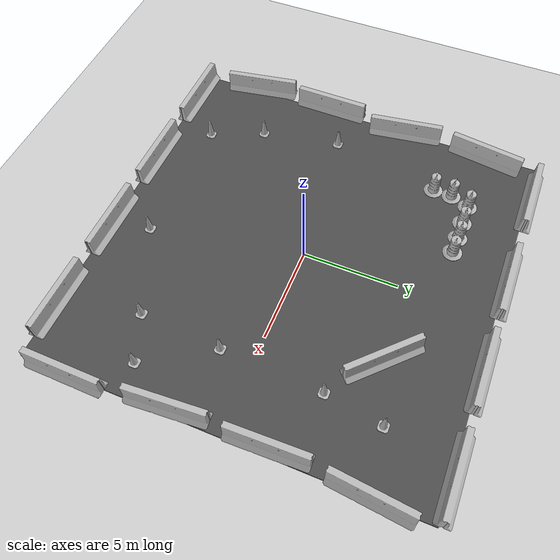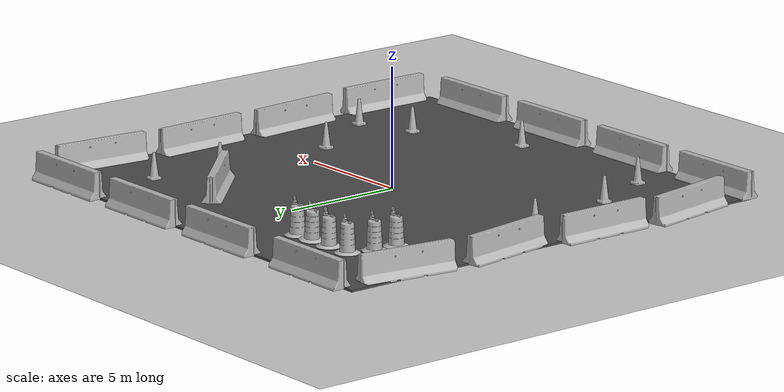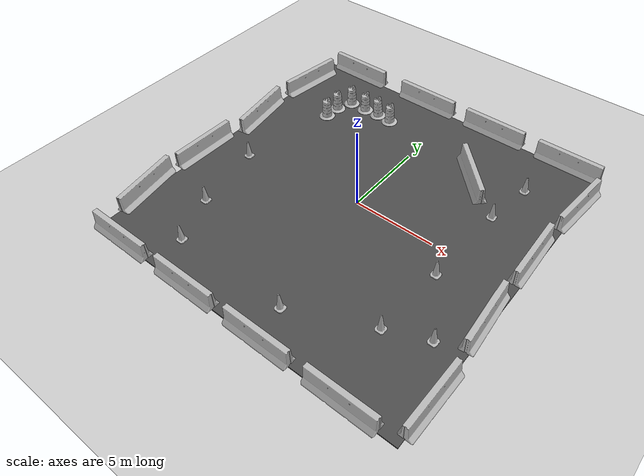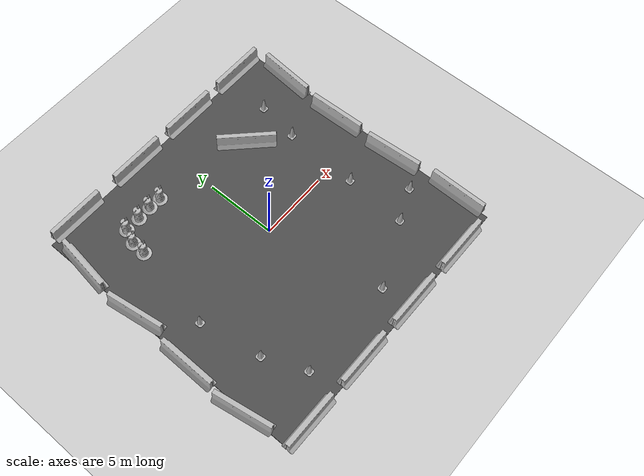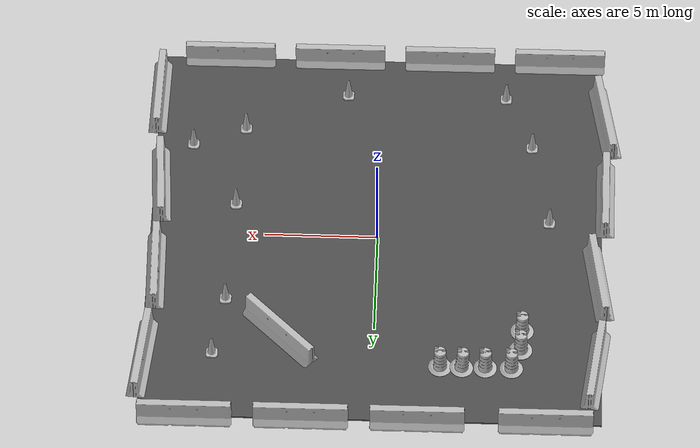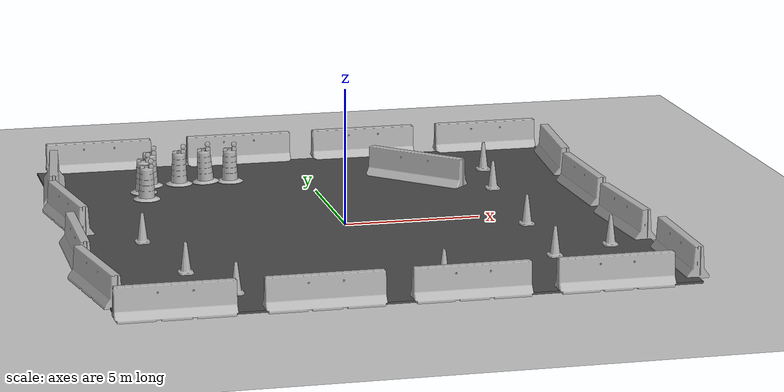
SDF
<sdf version="1.7">
 <world name="default">
  <light name="sun" type="directional">
   <pose>0 0 10 0 -0 0</pose>
   <diffuse>0.8 0.8 0.8 1</diffuse>
   <specular>0.2 0.2 0.2 1</specular>
   <attenuation>
    <range>1000</range>
    <constant>0.9</constant>
    <linear>0.01</linear>
    <quadratic>0.001</quadratic>
   </attenuation>
   <direction>-0.5 0.1 -0.9</direction>
   <spot><inner_angle>0</inner_angle><outer_angle>0</outer_angle><falloff>0</falloff></spot>
  </light>
  <model name="ground_plane">
   <static>1</static>
   <link name="link">
    <collision name="collision">
     <geometry><plane><normal>0 0 1</normal><size>100 100</size></plane></geometry>
     <surface><friction><ode><mu>100</mu><mu2>50</mu2></ode></friction></surface>
    </collision>
    <visual name="visual">
     <cast_shadows>0</cast_shadows>
     <geometry><plane><normal>0 0 1</normal><size>100 100</size></plane></geometry>
     <material>
      <script><uri>file://media/materials/scripts/gazebo.material</uri><name>Gazebo/Grey</name></script>
     </material>
    </visual>
    <velocity_decay><linear>0</linear><angular>0</angular></velocity_decay>
   </link>
  </model>
  <physics type="ode">
   <max_step_size>0.001</max_step_size>
   <real_time_factor>1</real_time_factor>
   <real_time_update_rate>1000</real_time_update_rate>
  </physics>
  <physics name="fast_simulation" default="0" type="ode">
   <real_time_update_rate>3000</real_time_update_rate>
   <max_step_size>0.001</max_step_size>
   <real_time_factor>1</real_time_factor>
  </physics>
  <scene><ambient>0.4 0.4 0.4 1</ambient><background>0.7 0.7 0.7 1</background><shadows>1</shadows></scene>
  <model name="jersey_barrier">
   <static>1</static>
   <link name="link">
    <visual name="visual">
     <geometry><mesh><uri>model://jersey_barrier/meshes/jersey_barrier.dae</uri></mesh></geometry>
    </visual>
    <collision name="upright">
     <pose>0 0 0.5715 0 -0 0</pose>
     <geometry><box><size>4.06542 0.3063 1.143</size></box></geometry>
    </collision>
    <collision name="base">
     <pose>0 0 0.032258 0 -0 0</pose>
     <geometry><box><size>4.06542 0.8107 0.064516</size></box></geometry>
    </collision>
    <collision name="base2">
     <pose>0 0 0.1 0 -0 0</pose>
     <geometry><box><size>4.06542 0.65 0.1</size></box></geometry>
    </collision>
    <collision name="base3">
     <pose>0 0 0.2 0 -0 0</pose>
     <geometry><box><size>4.06542 0.5 0.1</size></box></geometry>
    </collision>
    <collision name="left-angle">
     <pose>0 -0.224 0.2401 0.9 -0 0</pose>
     <geometry><box><size>4.06542 0.5 0.064516</size></box></geometry>
    </collision>
    <collision name="right-angle">
     <pose>0 0.224 0.2401 -0.9 0 0</pose>
     <geometry><box><size>4.06542 0.5 0.064516</size></box></geometry>
    </collision>
    <velocity_decay><linear>0</linear><angular>0</angular></velocity_decay>
   </link>
   <pose>-8 -10 0 0 -0 0</pose>
  </model>
  <model name="jersey_barrier_0">
   <static>1</static>
   <link name="link">
    <visual name="visual">
     <geometry><mesh><uri>model://jersey_barrier/meshes/jersey_barrier.dae</uri></mesh></geometry>
    </visual>
    <collision name="upright">
     <pose>0 0 0.5715 0 -0 0</pose>
     <geometry><box><size>4.06542 0.3063 1.143</size></box></geometry>
    </collision>
    <collision name="base">
     <pose>0 0 0.032258 0 -0 0</pose>
     <geometry><box><size>4.06542 0.8107 0.064516</size></box></geometry>
    </collision>
    <collision name="base2">
     <pose>0 0 0.1 0 -0 0</pose>
     <geometry><box><size>4.06542 0.65 0.1</size></box></geometry>
    </collision>
    <collision name="base3">
     <pose>0 0 0.2 0 -0 0</pose>
     <geometry><box><size>4.06542 0.5 0.1</size></box></geometry>
    </collision>
    <collision name="left-angle">
     <pose>0 -0.224 0.2401 0.9 -0 0</pose>
     <geometry><box><size>4.06542 0.5 0.064516</size></box></geometry>
    </collision>
    <collision name="right-angle">
     <pose>0 0.224 0.2401 -0.9 0 0</pose>
     <geometry><box><size>4.06542 0.5 0.064516</size></box></geometry>
    </collision>
    <velocity_decay><linear>0</linear><angular>0</angular></velocity_decay>
   </link>
   <pose>-3 -10 0 0 -0 0</pose>
  </model>
  <model name="jersey_barrier_1">
   <static>1</static>
   <link name="link">
    <visual name="visual">
     <geometry><mesh><uri>model://jersey_barrier/meshes/jersey_barrier.dae</uri></mesh></geometry>
    </visual>
    <collision name="upright">
     <pose>0 0 0.5715 0 -0 0</pose>
     <geometry><box><size>4.06542 0.3063 1.143</size></box></geometry>
    </collision>
    <collision name="base">
     <pose>0 0 0.032258 0 -0 0</pose>
     <geometry><box><size>4.06542 0.8107 0.064516</size></box></geometry>
    </collision>
    <collision name="base2">
     <pose>0 0 0.1 0 -0 0</pose>
     <geometry><box><size>4.06542 0.65 0.1</size></box></geometry>
    </collision>
    <collision name="base3">
     <pose>0 0 0.2 0 -0 0</pose>
     <geometry><box><size>4.06542 0.5 0.1</size></box></geometry>
    </collision>
    <collision name="left-angle">
     <pose>0 -0.224 0.2401 0.9 -0 0</pose>
     <geometry><box><size>4.06542 0.5 0.064516</size></box></geometry>
    </collision>
    <collision name="right-angle">
     <pose>0 0.224 0.2401 -0.9 0 0</pose>
     <geometry><box><size>4.06542 0.5 0.064516</size></box></geometry>
    </collision>
    <velocity_decay><linear>0</linear><angular>0</angular></velocity_decay>
   </link>
   <pose>2 -10 0 0 -0 0</pose>
  </model>
  <model name="jersey_barrier_2">
   <static>1</static>
   <link name="link">
    <visual name="visual">
     <geometry><mesh><uri>model://jersey_barrier/meshes/jersey_barrier.dae</uri></mesh></geometry>
    </visual>
    <collision name="upright">
     <pose>0 0 0.5715 0 -0 0</pose>
     <geometry><box><size>4.06542 0.3063 1.143</size></box></geometry>
    </collision>
    <collision name="base">
     <pose>0 0 0.032258 0 -0 0</pose>
     <geometry><box><size>4.06542 0.8107 0.064516</size></box></geometry>
    </collision>
    <collision name="base2">
     <pose>0 0 0.1 0 -0 0</pose>
     <geometry><box><size>4.06542 0.65 0.1</size></box></geometry>
    </collision>
    <collision name="base3">
     <pose>0 0 0.2 0 -0 0</pose>
     <geometry><box><size>4.06542 0.5 0.1</size></box></geometry>
    </collision>
    <collision name="left-angle">
     <pose>0 -0.224 0.2401 0.9 -0 0</pose>
     <geometry><box><size>4.06542 0.5 0.064516</size></box></geometry>
    </collision>
    <collision name="right-angle">
     <pose>0 0.224 0.2401 -0.9 0 0</pose>
     <geometry><box><size>4.06542 0.5 0.064516</size></box></geometry>
    </collision>
    <velocity_decay><linear>0</linear><angular>0</angular></velocity_decay>
   </link>
   <pose>7 -10 0 0 -0 0</pose>
  </model>
  <model name="jersey_barrier_3">
   <static>1</static>
   <link name="link">
    <visual name="visual">
     <geometry><mesh><uri>model://jersey_barrier/meshes/jersey_barrier.dae</uri></mesh></geometry>
    </visual>
    <collision name="upright">
     <pose>0 0 0.5715 0 -0 0</pose>
     <geometry><box><size>4.06542 0.3063 1.143</size></box></geometry>
    </collision>
    <collision name="base">
     <pose>0 0 0.032258 0 -0 0</pose>
     <geometry><box><size>4.06542 0.8107 0.064516</size></box></geometry>
    </collision>
    <collision name="base2">
     <pose>0 0 0.1 0 -0 0</pose>
     <geometry><box><size>4.06542 0.65 0.1</size></box></geometry>
    </collision>
    <collision name="base3">
     <pose>0 0 0.2 0 -0 0</pose>
     <geometry><box><size>4.06542 0.5 0.1</size></box></geometry>
    </collision>
    <collision name="left-angle">
     <pose>0 -0.224 0.2401 0.9 -0 0</pose>
     <geometry><box><size>4.06542 0.5 0.064516</size></box></geometry>
    </collision>
    <collision name="right-angle">
     <pose>0 0.224 0.2401 -0.9 0 0</pose>
     <geometry><box><size>4.06542 0.5 0.064516</size></box></geometry>
    </collision>
    <velocity_decay><linear>0</linear><angular>0</angular></velocity_decay>
   </link>
   <pose>-7.50675 10 0 0 -0 0</pose>
  </model>
  <model name="jersey_barrier_4">
   <static>1</static>
   <link name="link">
    <visual name="visual">
     <geometry><mesh><uri>model://jersey_barrier/meshes/jersey_barrier.dae</uri></mesh></geometry>
    </visual>
    <collision name="upright">
     <pose>0 0 0.5715 0 -0 0</pose>
     <geometry><box><size>4.06542 0.3063 1.143</size></box></geometry>
    </collision>
    <collision name="base">
     <pose>0 0 0.032258 0 -0 0</pose>
     <geometry><box><size>4.06542 0.8107 0.064516</size></box></geometry>
    </collision>
    <collision name="base2">
     <pose>0 0 0.1 0 -0 0</pose>
     <geometry><box><size>4.06542 0.65 0.1</size></box></geometry>
    </collision>
    <collision name="base3">
     <pose>0 0 0.2 0 -0 0</pose>
     <geometry><box><size>4.06542 0.5 0.1</size></box></geometry>
    </collision>
    <collision name="left-angle">
     <pose>0 -0.224 0.2401 0.9 -0 0</pose>
     <geometry><box><size>4.06542 0.5 0.064516</size></box></geometry>
    </collision>
    <collision name="right-angle">
     <pose>0 0.224 0.2401 -0.9 0 0</pose>
     <geometry><box><size>4.06542 0.5 0.064516</size></box></geometry>
    </collision>
    <velocity_decay><linear>0</linear><angular>0</angular></velocity_decay>
   </link>
   <pose>-2 10 0 0 -0 0</pose>
  </model>
  <model name="jersey_barrier_5">
   <static>1</static>
   <link name="link">
    <visual name="visual">
     <geometry><mesh><uri>model://jersey_barrier/meshes/jersey_barrier.dae</uri></mesh></geometry>
    </visual>
    <collision name="upright">
     <pose>0 0 0.5715 0 -0 0</pose>
     <geometry><box><size>4.06542 0.3063 1.143</size></box></geometry>
    </collision>
    <collision name="base">
     <pose>0 0 0.032258 0 -0 0</pose>
     <geometry><box><size>4.06542 0.8107 0.064516</size></box></geometry>
    </collision>
    <collision name="base2">
     <pose>0 0 0.1 0 -0 0</pose>
     <geometry><box><size>4.06542 0.65 0.1</size></box></geometry>
    </collision>
    <collision name="base3">
     <pose>0 0 0.2 0 -0 0</pose>
     <geometry><box><size>4.06542 0.5 0.1</size></box></geometry>
    </collision>
    <collision name="left-angle">
     <pose>0 -0.224 0.2401 0.9 -0 0</pose>
     <geometry><box><size>4.06542 0.5 0.064516</size></box></geometry>
    </collision>
    <collision name="right-angle">
     <pose>0 0.224 0.2401 -0.9 0 0</pose>
     <geometry><box><size>4.06542 0.5 0.064516</size></box></geometry>
    </collision>
    <velocity_decay><linear>0</linear><angular>0</angular></velocity_decay>
   </link>
   <pose>3 10 0 0 -0 0</pose>
  </model>
  <model name="jersey_barrier_6">
   <static>1</static>
   <link name="link">
    <visual name="visual">
     <geometry><mesh><uri>model://jersey_barrier/meshes/jersey_barrier.dae</uri></mesh></geometry>
    </visual>
    <collision name="upright">
     <pose>0 0 0.5715 0 -0 0</pose>
     <geometry><box><size>4.06542 0.3063 1.143</size></box></geometry>
    </collision>
    <collision name="base">
     <pose>0 0 0.032258 0 -0 0</pose>
     <geometry><box><size>4.06542 0.8107 0.064516</size></box></geometry>
    </collision>
    <collision name="base2">
     <pose>0 0 0.1 0 -0 0</pose>
     <geometry><box><size>4.06542 0.65 0.1</size></box></geometry>
    </collision>
    <collision name="base3">
     <pose>0 0 0.2 0 -0 0</pose>
     <geometry><box><size>4.06542 0.5 0.1</size></box></geometry>
    </collision>
    <collision name="left-angle">
     <pose>0 -0.224 0.2401 0.9 -0 0</pose>
     <geometry><box><size>4.06542 0.5 0.064516</size></box></geometry>
    </collision>
    <collision name="right-angle">
     <pose>0 0.224 0.2401 -0.9 0 0</pose>
     <geometry><box><size>4.06542 0.5 0.064516</size></box></geometry>
    </collision>
    <velocity_decay><linear>0</linear><angular>0</angular></velocity_decay>
   </link>
   <pose>8 10 0 0 -0 0</pose>
  </model>
  <model name="jersey_barrier_7">
   <static>1</static>
   <link name="link">
    <visual name="visual">
     <geometry><mesh><uri>model://jersey_barrier/meshes/jersey_barrier.dae</uri></mesh></geometry>
    </visual>
    <collision name="upright">
     <pose>0 0 0.5715 0 -0 0</pose>
     <geometry><box><size>4.06542 0.3063 1.143</size></box></geometry>
    </collision>
    <collision name="base">
     <pose>0 0 0.032258 0 -0 0</pose>
     <geometry><box><size>4.06542 0.8107 0.064516</size></box></geometry>
    </collision>
    <collision name="base2">
     <pose>0 0 0.1 0 -0 0</pose>
     <geometry><box><size>4.06542 0.65 0.1</size></box></geometry>
    </collision>
    <collision name="base3">
     <pose>0 0 0.2 0 -0 0</pose>
     <geometry><box><size>4.06542 0.5 0.1</size></box></geometry>
    </collision>
    <collision name="left-angle">
     <pose>0 -0.224 0.2401 0.9 -0 0</pose>
     <geometry><box><size>4.06542 0.5 0.064516</size></box></geometry>
    </collision>
    <collision name="right-angle">
     <pose>0 0.224 0.2401 -0.9 0 0</pose>
     <geometry><box><size>4.06542 0.5 0.064516</size></box></geometry>
    </collision>
    <velocity_decay><linear>0</linear><angular>0</angular></velocity_decay>
   </link>
   <pose>9.74902 -2.57759 0 0 -0 1.64</pose>
  </model>
  <model name="jersey_barrier_8">
   <static>1</static>
   <link name="link">
    <visual name="visual">
     <geometry><mesh><uri>model://jersey_barrier/meshes/jersey_barrier.dae</uri></mesh></geometry>
    </visual>
    <collision name="upright">
     <pose>0 0 0.5715 0 -0 0</pose>
     <geometry><box><size>4.06542 0.3063 1.143</size></box></geometry>
    </collision>
    <collision name="base">
     <pose>0 0 0.032258 0 -0 0</pose>
     <geometry><box><size>4.06542 0.8107 0.064516</size></box></geometry>
    </collision>
    <collision name="base2">
     <pose>0 0 0.1 0 -0 0</pose>
     <geometry><box><size>4.06542 0.65 0.1</size></box></geometry>
    </collision>
    <collision name="base3">
     <pose>0 0 0.2 0 -0 0</pose>
     <geometry><box><size>4.06542 0.5 0.1</size></box></geometry>
    </collision>
    <collision name="left-angle">
     <pose>0 -0.224 0.2401 0.9 -0 0</pose>
     <geometry><box><size>4.06542 0.5 0.064516</size></box></geometry>
    </collision>
    <collision name="right-angle">
     <pose>0 0.224 0.2401 -0.9 0 0</pose>
     <geometry><box><size>4.06542 0.5 0.064516</size></box></geometry>
    </collision>
    <velocity_decay><linear>0</linear><angular>0</angular></velocity_decay>
   </link>
   <pose>9.70141 2.24369 0 0 -0 1.6</pose>
  </model>
  <model name="jersey_barrier_9">
   <static>1</static>
   <link name="link">
    <visual name="visual">
     <geometry><mesh><uri>model://jersey_barrier/meshes/jersey_barrier.dae</uri></mesh></geometry>
    </visual>
    <collision name="upright">
     <pose>0 0 0.5715 0 -0 0</pose>
     <geometry><box><size>4.06542 0.3063 1.143</size></box></geometry>
    </collision>
    <collision name="base">
     <pose>0 0 0.032258 0 -0 0</pose>
     <geometry><box><size>4.06542 0.8107 0.064516</size></box></geometry>
    </collision>
    <collision name="base2">
     <pose>0 0 0.1 0 -0 0</pose>
     <geometry><box><size>4.06542 0.65 0.1</size></box></geometry>
    </collision>
    <collision name="base3">
     <pose>0 0 0.2 0 -0 0</pose>
     <geometry><box><size>4.06542 0.5 0.1</size></box></geometry>
    </collision>
    <collision name="left-angle">
     <pose>0 -0.224 0.2401 0.9 -0 0</pose>
     <geometry><box><size>4.06542 0.5 0.064516</size></box></geometry>
    </collision>
    <collision name="right-angle">
     <pose>0 0.224 0.2401 -0.9 0 0</pose>
     <geometry><box><size>4.06542 0.5 0.064516</size></box></geometry>
    </collision>
    <velocity_decay><linear>0</linear><angular>0</angular></velocity_decay>
   </link>
   <pose>-10.0607 -6.69856 0 0 0 -1.4</pose>
  </model>
  <model name="jersey_barrier_10">
   <static>1</static>
   <link name="link">
    <visual name="visual">
     <geometry><mesh><uri>model://jersey_barrier/meshes/jersey_barrier.dae</uri></mesh></geometry>
    </visual>
    <collision name="upright">
     <pose>0 0 0.5715 0 -0 0</pose>
     <geometry><box><size>4.06542 0.3063 1.143</size></box></geometry>
    </collision>
    <collision name="base">
     <pose>0 0 0.032258 0 -0 0</pose>
     <geometry><box><size>4.06542 0.8107 0.064516</size></box></geometry>
    </collision>
    <collision name="base2">
     <pose>0 0 0.1 0 -0 0</pose>
     <geometry><box><size>4.06542 0.65 0.1</size></box></geometry>
    </collision>
    <collision name="base3">
     <pose>0 0 0.2 0 -0 0</pose>
     <geometry><box><size>4.06542 0.5 0.1</size></box></geometry>
    </collision>
    <collision name="left-angle">
     <pose>0 -0.224 0.2401 0.9 -0 0</pose>
     <geometry><box><size>4.06542 0.5 0.064516</size></box></geometry>
    </collision>
    <collision name="right-angle">
     <pose>0 0.224 0.2401 -0.9 0 0</pose>
     <geometry><box><size>4.06542 0.5 0.064516</size></box></geometry>
    </collision>
    <velocity_decay><linear>0</linear><angular>0</angular></velocity_decay>
   </link>
   <pose>-10.0774 -2.27159 0 0 -0 1.56</pose>
  </model>
  <model name="jersey_barrier_11">
   <static>1</static>
   <link name="link">
    <visual name="visual">
     <geometry><mesh><uri>model://jersey_barrier/meshes/jersey_barrier.dae</uri></mesh></geometry>
    </visual>
    <collision name="upright">
     <pose>0 0 0.5715 0 -0 0</pose>
     <geometry><box><size>4.06542 0.3063 1.143</size></box></geometry>
    </collision>
    <collision name="base">
     <pose>0 0 0.032258 0 -0 0</pose>
     <geometry><box><size>4.06542 0.8107 0.064516</size></box></geometry>
    </collision>
    <collision name="base2">
     <pose>0 0 0.1 0 -0 0</pose>
     <geometry><box><size>4.06542 0.65 0.1</size></box></geometry>
    </collision>
    <collision name="base3">
     <pose>0 0 0.2 0 -0 0</pose>
     <geometry><box><size>4.06542 0.5 0.1</size></box></geometry>
    </collision>
    <collision name="left-angle">
     <pose>0 -0.224 0.2401 0.9 -0 0</pose>
     <geometry><box><size>4.06542 0.5 0.064516</size></box></geometry>
    </collision>
    <collision name="right-angle">
     <pose>0 0.224 0.2401 -0.9 0 0</pose>
     <geometry><box><size>4.06542 0.5 0.064516</size></box></geometry>
    </collision>
    <velocity_decay><linear>0</linear><angular>0</angular></velocity_decay>
   </link>
   <pose>-9.77013 2.34791 0 0 -0 1.72</pose>
  </model>
  <model name="jersey_barrier_12">
   <static>1</static>
   <link name="link">
    <visual name="visual">
     <geometry><mesh><uri>model://jersey_barrier/meshes/jersey_barrier.dae</uri></mesh></geometry>
    </visual>
    <collision name="upright">
     <pose>0 0 0.5715 0 -0 0</pose>
     <geometry><box><size>4.06542 0.3063 1.143</size></box></geometry>
    </collision>
    <collision name="base">
     <pose>0 0 0.032258 0 -0 0</pose>
     <geometry><box><size>4.06542 0.8107 0.064516</size></box></geometry>
    </collision>
    <collision name="base2">
     <pose>0 0 0.1 0 -0 0</pose>
     <geometry><box><size>4.06542 0.65 0.1</size></box></geometry>
    </collision>
    <collision name="base3">
     <pose>0 0 0.2 0 -0 0</pose>
     <geometry><box><size>4.06542 0.5 0.1</size></box></geometry>
    </collision>
    <collision name="left-angle">
     <pose>0 -0.224 0.2401 0.9 -0 0</pose>
     <geometry><box><size>4.06542 0.5 0.064516</size></box></geometry>
    </collision>
    <collision name="right-angle">
     <pose>0 0.224 0.2401 -0.9 0 0</pose>
     <geometry><box><size>4.06542 0.5 0.064516</size></box></geometry>
    </collision>
    <velocity_decay><linear>0</linear><angular>0</angular></velocity_decay>
   </link>
   <pose>10.0879 -7.62159 0 0 -0 1.56</pose>
  </model>
  <model name="jersey_barrier_13">
   <static>1</static>
   <link name="link">
    <visual name="visual">
     <geometry><mesh><uri>model://jersey_barrier/meshes/jersey_barrier.dae</uri></mesh></geometry>
    </visual>
    <collision name="upright">
     <pose>0 0 0.5715 0 -0 0</pose>
     <geometry><box><size>4.06542 0.3063 1.143</size></box></geometry>
    </collision>
    <collision name="base">
     <pose>0 0 0.032258 0 -0 0</pose>
     <geometry><box><size>4.06542 0.8107 0.064516</size></box></geometry>
    </collision>
    <collision name="base2">
     <pose>0 0 0.1 0 -0 0</pose>
     <geometry><box><size>4.06542 0.65 0.1</size></box></geometry>
    </collision>
    <collision name="base3">
     <pose>0 0 0.2 0 -0 0</pose>
     <geometry><box><size>4.06542 0.5 0.1</size></box></geometry>
    </collision>
    <collision name="left-angle">
     <pose>0 -0.224 0.2401 0.9 -0 0</pose>
     <geometry><box><size>4.06542 0.5 0.064516</size></box></geometry>
    </collision>
    <collision name="right-angle">
     <pose>0 0.224 0.2401 -0.9 0 0</pose>
     <geometry><box><size>4.06542 0.5 0.064516</size></box></geometry>
    </collision>
    <velocity_decay><linear>0</linear><angular>0</angular></velocity_decay>
   </link>
   <pose>10 7 0 0 -0 1.48</pose>
  </model>
  <model name="jersey_barrier_14">
   <static>1</static>
   <link name="link">
    <visual name="visual">
     <geometry><mesh><uri>model://jersey_barrier/meshes/jersey_barrier.dae</uri></mesh></geometry>
    </visual>
    <collision name="upright">
     <pose>0 0 0.5715 0 -0 0</pose>
     <geometry><box><size>4.06542 0.3063 1.143</size></box></geometry>
    </collision>
    <collision name="base">
     <pose>0 0 0.032258 0 -0 0</pose>
     <geometry><box><size>4.06542 0.8107 0.064516</size></box></geometry>
    </collision>
    <collision name="base2">
     <pose>0 0 0.1 0 -0 0</pose>
     <geometry><box><size>4.06542 0.65 0.1</size></box></geometry>
    </collision>
    <collision name="base3">
     <pose>0 0 0.2 0 -0 0</pose>
     <geometry><box><size>4.06542 0.5 0.1</size></box></geometry>
    </collision>
    <collision name="left-angle">
     <pose>0 -0.224 0.2401 0.9 -0 0</pose>
     <geometry><box><size>4.06542 0.5 0.064516</size></box></geometry>
    </collision>
    <collision name="right-angle">
     <pose>0 0.224 0.2401 -0.9 0 0</pose>
     <geometry><box><size>4.06542 0.5 0.064516</size></box></geometry>
    </collision>
    <velocity_decay><linear>0</linear><angular>0</angular></velocity_decay>
   </link>
   <pose>-9.64482 7.05946 0 0 -0 1.44</pose>
  </model>
  <model name="jersey_barrier_15">
   <static>1</static>
   <link name="link">
    <visual name="visual">
     <geometry><mesh><uri>model://jersey_barrier/meshes/jersey_barrier.dae</uri></mesh></geometry>
    </visual>
    <collision name="upright">
     <pose>0 0 0.5715 0 -0 0</pose>
     <geometry><box><size>4.06542 0.3063 1.143</size></box></geometry>
    </collision>
    <collision name="base">
     <pose>0 0 0.032258 0 -0 0</pose>
     <geometry><box><size>4.06542 0.8107 0.064516</size></box></geometry>
    </collision>
    <collision name="base2">
     <pose>0 0 0.1 0 -0 0</pose>
     <geometry><box><size>4.06542 0.65 0.1</size></box></geometry>
    </collision>
    <collision name="base3">
     <pose>0 0 0.2 0 -0 0</pose>
     <geometry><box><size>4.06542 0.5 0.1</size></box></geometry>
    </collision>
    <collision name="left-angle">
     <pose>0 -0.224 0.2401 0.9 -0 0</pose>
     <geometry><box><size>4.06542 0.5 0.064516</size></box></geometry>
    </collision>
    <collision name="right-angle">
     <pose>0 0.224 0.2401 -0.9 0 0</pose>
     <geometry><box><size>4.06542 0.5 0.064516</size></box></geometry>
    </collision>
    <velocity_decay><linear>0</linear><angular>0</angular></velocity_decay>
   </link>
   <pose>4.07284 5.56126 0 0 -0 2.36</pose>
  </model>
  <model name="Construction Cone">
   <link name="link">
    <collision name="collision">
     <geometry>
      <mesh><scale>10 10 10</scale><uri>model://construction_cone/meshes/construction_cone.dae</uri></mesh>
     </geometry>
    </collision>
    <visual name="visual">
     <geometry>
      <mesh><scale>10 10 10</scale><uri>model://construction_cone/meshes/construction_cone.dae</uri></mesh>
     </geometry>
    </visual>
    <velocity_decay><linear>0</linear><angular>0</angular></velocity_decay>
    <inertial>
     <inertia><ixx>1</ixx><ixy>0</ixy><ixz>0</ixz><iyy>1</iyy><iyz>0</iyz><izz>1</izz></inertia>
     <mass>1</mass>
    </inertial>
   </link>
   <pose>-5.59121 -8 0.05 0 -0 0</pose>
   <static>0</static>
  </model>
  <model name="Construction Cone_0">
   <link name="link">
    <collision name="collision">
     <geometry>
      <mesh><scale>10 10 10</scale><uri>model://construction_cone/meshes/construction_cone.dae</uri></mesh>
     </geometry>
    </collision>
    <visual name="visual">
     <geometry>
      <mesh><scale>10 10 10</scale><uri>model://construction_cone/meshes/construction_cone.dae</uri></mesh>
     </geometry>
    </visual>
    <velocity_decay><linear>0</linear><angular>0</angular></velocity_decay>
    <inertial>
     <inertia><ixx>1</ixx><ixy>0</ixy><ixz>0</ixz><iyy>1</iyy><iyz>0</iyz><izz>1</izz></inertia>
     <mass>1</mass>
    </inertial>
   </link>
   <pose>6.99685 6.55732 0.05 -0 1e-06 -0.007012</pose>
   <static>0</static>
  </model>
  <model name="asphalt_plane">
   <static>1</static>
   <link name="link">
    <collision name="collision"><geometry><box><size>20 20 0.1</size></box></geometry></collision>
    <visual name="visual">
     <cast_shadows>0</cast_shadows>
     <geometry><box><size>20 20 0.1</size></box></geometry>
     <material>
      <script>
       <uri>model://asphalt_plane/materials/scripts</uri>
       <uri>model://asphalt_plane/materials/textures</uri>
       <name>vrc/asphalt</name>
      </script>
     </material>
    </visual>
    <velocity_decay><linear>0</linear><angular>0</angular></velocity_decay>
   </link>
   <pose>0.076733 -0.110379 0 0 -0 0</pose>
  </model>
  <model name="Construction Barrel_2">
   <link name="link">
    <inertial>
     <pose>0 0 0.4 0 -0 0</pose>
     <mass>500</mass>
     <inertia><ixx>51.2096</ixx><iyy>51.2096</iyy><izz>25</izz><ixy>0</ixy><ixz>0</ixz><iyz>0</iyz></inertia>
    </inertial>
    <collision name="collision">
     <geometry><mesh><uri>model://construction_barrel/meshes/construction_barrel.dae</uri></mesh></geometry>
    </collision>
    <visual name="visual">
     <geometry><mesh><uri>model://construction_barrel/meshes/construction_barrel.dae</uri></mesh></geometry>
    </visual>
    <velocity_decay><linear>0</linear><angular>0</angular></velocity_decay>
   </link>
   <pose>-6.45061 4.99641 0.049999 -1e-06 -2e-06 0.065031</pose>
   <static>0</static>
  </model>
  <model name="Construction Barrel_3">
   <link name="link">
    <inertial>
     <pose>0 0 0.4 0 -0 0</pose>
     <mass>500</mass>
     <inertia><ixx>51.2096</ixx><iyy>51.2096</iyy><izz>25</izz><ixy>0</ixy><ixz>0</ixz><iyz>0</iyz></inertia>
    </inertial>
    <collision name="collision">
     <geometry><mesh><uri>model://construction_barrel/meshes/construction_barrel.dae</uri></mesh></geometry>
    </collision>
    <visual name="visual">
     <geometry><mesh><uri>model://construction_barrel/meshes/construction_barrel.dae</uri></mesh></geometry>
    </visual>
    <velocity_decay><linear>0</linear><angular>0</angular></velocity_decay>
   </link>
   <pose>-6.4017 6.01112 0.049999 3e-06 -0 -0.120679</pose>
   <static>0</static>
  </model>
  <model name="Construction Barrel_4">
   <link name="link">
    <inertial>
     <pose>0 0 0.4 0 -0 0</pose>
     <mass>500</mass>
     <inertia><ixx>51.2096</ixx><iyy>51.2096</iyy><izz>25</izz><ixy>0</ixy><ixz>0</ixz><iyz>0</iyz></inertia>
    </inertial>
    <collision name="collision">
     <geometry><mesh><uri>model://construction_barrel/meshes/construction_barrel.dae</uri></mesh></geometry>
    </collision>
    <visual name="visual">
     <geometry><mesh><uri>model://construction_barrel/meshes/construction_barrel.dae</uri></mesh></geometry>
    </visual>
    <velocity_decay><linear>0</linear><angular>0</angular></velocity_decay>
   </link>
   <pose>-6.0063 7.00882 0.049999 3e-06 -0 -0.049517</pose>
   <static>0</static>
  </model>
  <model name="Construction Barrel_5">
   <link name="link">
    <inertial>
     <pose>0 0 0.4 0 -0 0</pose>
     <mass>500</mass>
     <inertia><ixx>51.2096</ixx><iyy>51.2096</iyy><izz>25</izz><ixy>0</ixy><ixz>0</ixz><iyz>0</iyz></inertia>
    </inertial>
    <collision name="collision">
     <geometry><mesh><uri>model://construction_barrel/meshes/construction_barrel.dae</uri></mesh></geometry>
    </collision>
    <visual name="visual">
     <geometry><mesh><uri>model://construction_barrel/meshes/construction_barrel.dae</uri></mesh></geometry>
    </visual>
    <velocity_decay><linear>0</linear><angular>0</angular></velocity_decay>
   </link>
   <pose>-4.87562 7.00816 0.049999 -1e-06 -3e-06 0.14618</pose>
   <static>0</static>
  </model>
  <model name="Construction Barrel_6">
   <link name="link">
    <inertial>
     <pose>0 0 0.4 0 -0 0</pose>
     <mass>500</mass>
     <inertia><ixx>51.2096</ixx><iyy>51.2096</iyy><izz>25</izz><ixy>0</ixy><ixz>0</ixz><iyz>0</iyz></inertia>
    </inertial>
    <collision name="collision">
     <geometry><mesh><uri>model://construction_barrel/meshes/construction_barrel.dae</uri></mesh></geometry>
    </collision>
    <visual name="visual">
     <geometry><mesh><uri>model://construction_barrel/meshes/construction_barrel.dae</uri></mesh></geometry>
    </visual>
    <velocity_decay><linear>0</linear><angular>0</angular></velocity_decay>
   </link>
   <pose>-3.84467 7.0337 0.08065 -0.00793 -0.060162 0.029015</pose>
   <static>0</static>
  </model>
  <model name="Construction Barrel_7">
   <link name="link">
    <inertial>
     <pose>0 0 0.4 0 -0 0</pose>
     <mass>500</mass>
     <inertia><ixx>51.2096</ixx><iyy>51.2096</iyy><izz>25</izz><ixy>0</ixy><ixz>0</ixz><iyz>0</iyz></inertia>
    </inertial>
    <collision name="collision">
     <geometry><mesh><uri>model://construction_barrel/meshes/construction_barrel.dae</uri></mesh></geometry>
    </collision>
    <visual name="visual">
     <geometry><mesh><uri>model://construction_barrel/meshes/construction_barrel.dae</uri></mesh></geometry>
    </visual>
    <velocity_decay><linear>0</linear><angular>0</angular></velocity_decay>
   </link>
   <pose>-2.91627 7.00682 0.049998 1.4e-05 4e-06 -0.017237</pose>
   <static>0</static>
  </model>
  <model name="Construction Cone_1">
   <link name="link">
    <collision name="collision">
     <geometry>
      <mesh><scale>10 10 10</scale><uri>model://construction_cone/meshes/construction_cone.dae</uri></mesh>
     </geometry>
    </collision>
    <visual name="visual">
     <geometry>
      <mesh><scale>10 10 10</scale><uri>model://construction_cone/meshes/construction_cone.dae</uri></mesh>
     </geometry>
    </visual>
    <velocity_decay><linear>0</linear><angular>0</angular></velocity_decay>
    <inertial>
     <inertia><ixx>1</ixx><ixy>0</ixy><ixz>0</ixz><iyy>1</iyy><iyz>0</iyz><izz>1</izz></inertia>
     <mass>1</mass>
    </inertial>
   </link>
   <pose>8.42887 -5 0.050001 -2e-06 -4e-06 -0</pose>
   <static>0</static>
  </model>
  <gravity>0 0 -9.8</gravity>
  <magnetic_field>6e-06 2.3e-05 -4.2e-05</magnetic_field>
  <atmosphere type="adiabatic"/>
  <spherical_coordinates>
   <surface_model>EARTH_WGS84</surface_model>
   <latitude_deg>0</latitude_deg>
   <longitude_deg>0</longitude_deg>
   <elevation>0</elevation>
   <heading_deg>0</heading_deg>
  </spherical_coordinates>
  <model name="Construction Cone_0_clone">
   <link name="link">
    <collision name="collision">
     <geometry>
      <mesh><scale>10 10 10</scale><uri>model://construction_cone/meshes/construction_cone.dae</uri></mesh>
     </geometry>
    </collision>
    <visual name="visual">
     <geometry>
      <mesh><scale>10 10 10</scale><uri>model://construction_cone/meshes/construction_cone.dae</uri></mesh>
     </geometry>
    </visual>
    <velocity_decay><linear>0</linear><angular>0</angular></velocity_decay>
    <inertial>
     <inertia><ixx>1</ixx><ixy>0</ixy><ixz>0</ixz><iyy>1</iyy><iyz>0</iyz><izz>1</izz></inertia>
     <mass>1</mass>
    </inertial>
   </link>
   <pose>6.5499 3.61243 0.05 0 -0 -0.007012</pose>
   <static>0</static>
  </model>
  <model name="Construction Cone_0_clone_0">
   <link name="link">
    <collision name="collision">
     <geometry>
      <mesh><scale>10 10 10</scale><uri>model://construction_cone/meshes/construction_cone.dae</uri></mesh>
     </geometry>
    </collision>
    <visual name="visual">
     <geometry>
      <mesh><scale>10 10 10</scale><uri>model://construction_cone/meshes/construction_cone.dae</uri></mesh>
     </geometry>
    </visual>
    <velocity_decay><linear>0</linear><angular>0</angular></velocity_decay>
    <inertial>
     <inertia><ixx>1</ixx><ixy>0</ixy><ixz>0</ixz><iyy>1</iyy><iyz>0</iyz><izz>1</izz></inertia>
     <mass>1</mass>
    </inertial>
   </link>
   <pose>6.34847 -1.63501 0.05 -1e-06 -1e-06 -0.007012</pose>
   <static>0</static>
  </model>
  <model name="Construction Cone_0_clone_1">
   <link name="link">
    <collision name="collision">
     <geometry>
      <mesh><scale>10 10 10</scale><uri>model://construction_cone/meshes/construction_cone.dae</uri></mesh>
     </geometry>
    </collision>
    <visual name="visual">
     <geometry>
      <mesh><scale>10 10 10</scale><uri>model://construction_cone/meshes/construction_cone.dae</uri></mesh>
     </geometry>
    </visual>
    <velocity_decay><linear>0</linear><angular>0</angular></velocity_decay>
    <inertial>
     <inertia><ixx>1</ixx><ixy>0</ixy><ixz>0</ixz><iyy>1</iyy><iyz>0</iyz><izz>1</izz></inertia>
     <mass>1</mass>
    </inertial>
   </link>
   <pose>6.10161 -5.95441 0.05 0 -0 -0.007012</pose>
   <static>0</static>
  </model>
  <model name="Construction Cone_0_clone_2">
   <link name="link">
    <collision name="collision">
     <geometry>
      <mesh><scale>10 10 10</scale><uri>model://construction_cone/meshes/construction_cone.dae</uri></mesh>
     </geometry>
    </collision>
    <visual name="visual">
     <geometry>
      <mesh><scale>10 10 10</scale><uri>model://construction_cone/meshes/construction_cone.dae</uri></mesh>
     </geometry>
    </visual>
    <velocity_decay><linear>0</linear><angular>0</angular></velocity_decay>
    <inertial>
     <inertia><ixx>1</ixx><ixy>0</ixy><ixz>0</ixz><iyy>1</iyy><iyz>0</iyz><izz>1</izz></inertia>
     <mass>1</mass>
    </inertial>
   </link>
   <pose>1.55961 -8.01151 0.05 0 -1e-06 -0.007012</pose>
   <static>0</static>
  </model>
  <model name="Construction Cone_0_clone_3">
   <link name="link">
    <collision name="collision">
     <geometry>
      <mesh><scale>10 10 10</scale><uri>model://construction_cone/meshes/construction_cone.dae</uri></mesh>
     </geometry>
    </collision>
    <visual name="visual">
     <geometry>
      <mesh><scale>10 10 10</scale><uri>model://construction_cone/meshes/construction_cone.dae</uri></mesh>
     </geometry>
    </visual>
    <velocity_decay><linear>0</linear><angular>0</angular></velocity_decay>
    <inertial>
     <inertia><ixx>1</ixx><ixy>0</ixy><ixz>0</ixz><iyy>1</iyy><iyz>0</iyz><izz>1</izz></inertia>
     <mass>1</mass>
    </inertial>
   </link>
   <pose>-6.79368 -5.19545 0.049999 -1e-06 2e-06 -0.007012</pose>
   <static>0</static>
  </model>
  <model name="Construction Cone_0_clone_4">
   <link name="link">
    <collision name="collision">
     <geometry>
      <mesh><scale>10 10 10</scale><uri>model://construction_cone/meshes/construction_cone.dae</uri></mesh>
     </geometry>
    </collision>
    <visual name="visual">
     <geometry>
      <mesh><scale>10 10 10</scale><uri>model://construction_cone/meshes/construction_cone.dae</uri></mesh>
     </geometry>
    </visual>
    <velocity_decay><linear>0</linear><angular>0</angular></velocity_decay>
    <inertial>
     <inertia><ixx>1</ixx><ixy>0</ixy><ixz>0</ixz><iyy>1</iyy><iyz>0</iyz><izz>1</izz></inertia>
     <mass>1</mass>
    </inertial>
   </link>
   <pose>-7.59202 -0.957224 0.049999 2e-06 1e-06 -0.007012</pose>
   <static>0</static>
  </model>
 </world>
</sdf>
